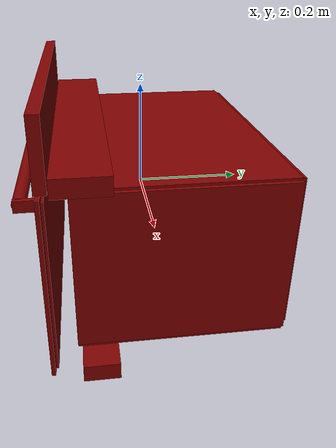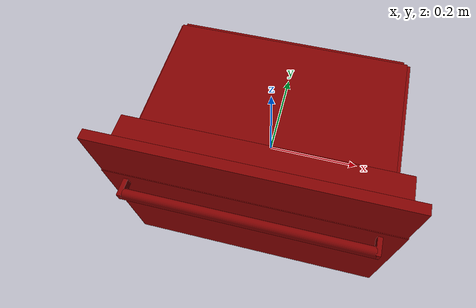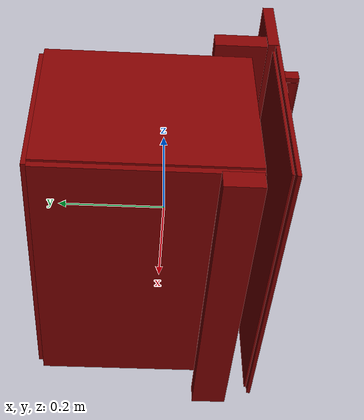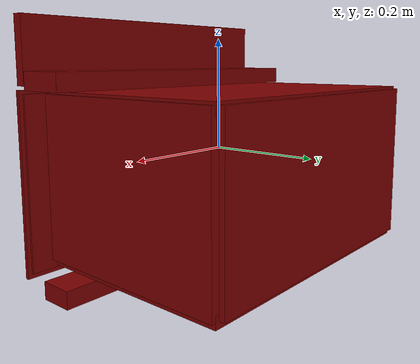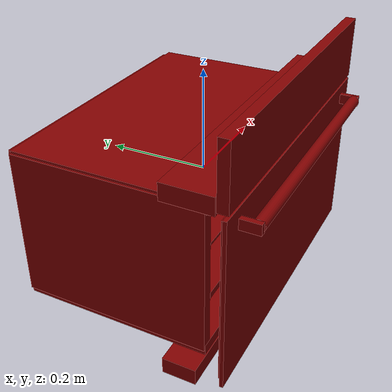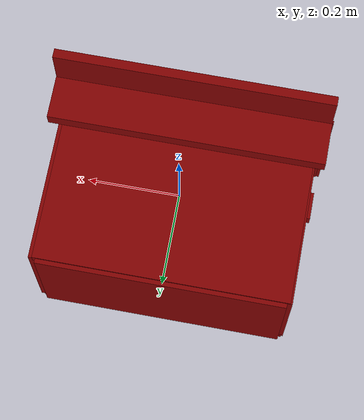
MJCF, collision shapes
<mujoco model="model">
  <compiler angle="radian"/>
  <asset>
    <mesh file="visuals/Body001.obj" name="Body001_vis"/>
    <mesh file="visuals/Container001.obj" name="Container001_vis"/>
    <mesh file="visuals/Container002.obj" name="Container002_vis"/>
    <mesh file="visuals/Door001.obj" name="Door001_vis"/>
    <mesh file="visuals/Door001_Clear.obj" name="Door001_Clear_vis"/>
    <texture file="visuals/T_BC001.png" name="Body001_material" type="2d"/>
    <material name="Body001_material" rgba="1 1 1 1.0" texture="Body001_material" shininess="0.5" specular="0.3103448502657381"/>
    <texture file="visuals/T_BC001.png" name="Container001_material" type="2d"/>
    <material name="Container001_material" rgba="1 1 1 1.0" texture="Container001_material" shininess="0.5" specular="0.3103448502657381"/>
    <texture file="visuals/T_BC001.png" name="Container002_material" type="2d"/>
    <material name="Container002_material" rgba="1 1 1 1.0" texture="Container002_material" shininess="0.5" specular="0.3103448502657381"/>
    <texture file="visuals/T_BC001.png" name="Door001_material" type="2d"/>
    <material name="Door001_material" rgba="1 1 1 1.0" texture="Door001_material" shininess="0.5" specular="0.3103448502657381"/>
    <texture file="visuals/T_BC001.png" name="Door001_Clear_material" type="2d"/>
    <material name="Door001_Clear_material" rgba="1 1 1 0.7731958627700806" texture="Door001_Clear_material" shininess="0.5" specular="0.3103448502657381"/>
  </asset>
  <default>
    <default class="visual">
      <geom conaffinity="0" contype="0" group="1" type="mesh"/>
    </default>
    <default class="collision">
      <geom group="0" rgba="0.5 0 0 0.5"/>
    </default>
    <default class="spawn">
      <geom group="0" rgba="1 1 1 0.5" contype="0" conaffinity="0"/>
      <site group="0" rgba="1 1 1 0.5"/>
    </default>
    <default class="region">
      <geom group="1" conaffinity="0" contype="0" rgba="0 1 0 0"/>
    </default>
  </default>
  <worldbody>
    <body>
      <body name="object">
        <geom mesh="Body001_vis" type="mesh" solimp="0.998 0.998 0.001" solref="0.001 1" density="100" friction="0.95 0.3 0.1" class="visual" material="Body001_material"/>
        <geom class="collision" type="box" pos="0.0005897199735045433 -0.17817050218582153 0.17886848747730255" size="0.29561981558799744 0.00988076627254486 0.05934790149331093" quat="1.0 0.0 0.0 0.0"/>
        <geom class="collision" type="box" pos="0.0005897199735045433 -0.12034451961517334 0.12873178720474243" size="0.29561981558799744 0.04625357687473297 0.016083436086773872" quat="1.0 0.0 0.0 0.0"/>
        <geom class="collision" type="box" pos="0.0005897199735045433 -0.10207117348909378 -0.2241232544183731" size="0.29561981558799744 0.03201546519994736 0.016083436086773872" quat="1.0 0.0 0.0 0.0"/>
        <geom class="collision" type="box" pos="0.0005897199735045433 -0.09587820619344711 -0.19395418465137482" size="0.19131983816623688 0.023217469453811646 0.016083434224128723" quat="1.0 0.0 0.0 0.0"/>
        <geom class="collision" type="box" pos="-0.0024960804730653763 0.2229592502117157 -0.0349552221596241" size="0.26218441128730774 0.00988076627254486 0.14234308898448944" quat="1.0 0.0 0.0 0.0"/>
        <geom class="collision" type="box" pos="0.2646077275276184 0.04112903028726578 -0.0349552221596241" size="0.00988078024238348 0.18203607201576233 0.14234308898448944" quat="1.0 0.0 0.0 0.0"/>
        <geom class="collision" type="box" pos="-0.2654913663864136 0.04112903028726578 -0.0349552221596241" size="0.00988078024238348 0.18203607201576233 0.14234308898448944" quat="1.0 0.0 0.0 0.0"/>
        <geom class="collision" type="box" pos="-0.0023331288248300552 0.04112903028726578 0.10197731107473373" size="0.26893773674964905 0.18203608691692352 0.009880789555609226" quat="1.0 0.0 0.0 0.0"/>
        <geom class="collision" type="box" pos="-0.0023331288248300552 0.04112903028726578 -0.1783587485551834" size="0.26893773674964905 0.18203608691692352 0.009880789555609226" quat="1.0 0.0 0.0 0.0"/>
        <body name="Container001">
          <joint axis="0.0 -1.0 0.0" pos="-9.388010948896408e-05 0.009812705218791962 -0.013497047126293182" limited="true" name="Container001_joint" range="0.0 0.25" type="slide" damping="1" frictionloss="1" armature=".01" stiffness="0.05"/>
          <geom mesh="Container001_vis" type="mesh" solimp="0.998 0.998 0.001" solref="0.001 1" density="100" friction="0.95 0.3 0.1" class="visual" material="Container001_material"/>
          <geom class="collision" type="box" pos="-0.00011194217950105667 0.008494682610034943 -0.014804147183895111" size="0.2433086782693863 0.12272078543901443 0.002559476066380739" quat="1.0 0.0 0.0 0.0"/>
        </body>
        <body name="Container002">
          <joint axis="0.0 -1.0 0.0" pos="0.0004844311624765396 0.02027975767850876 -0.09068997949361801" limited="true" name="Container002_joint" range="0.0 0.25" type="slide" damping="1" frictionloss="1" armature=".01" stiffness="0.05"/>
          <geom mesh="Container002_vis" type="mesh" solimp="0.998 0.998 0.001" solref="0.001 1" density="100" friction="0.95 0.3 0.1" class="visual" material="Container002_material"/>
          <geom class="collision" type="box" pos="-0.00011194217950105667 0.020306125283241272 -0.0956801027059555" size="0.23718252778053284 0.14945583045482635 0.006238078232854605" quat="1.0 0.0 0.0 0.0"/>
        </body>
        <body name="Door001">
          <joint axis="1.0 0.0 0.0" pos="-0.011750079691410065 -0.17686814069747925 -0.21409060060977936" limited="true" name="Door001_joint" range="0.0 1.5707963267948966" type="hinge" damping="1" frictionloss="1" armature=".01" stiffness="1" springref="-1.6"/>
          <geom mesh="Door001_vis" type="mesh" solimp="0.998 0.998 0.001" solref="0.001 1" density="100" friction="0.95 0.3 0.1" class="visual" material="Door001_material"/>
          <geom class="collision" type="box" pos="0.00013540033251047134 -0.18361909687519073 -0.051945582032203674" size="0.2994017004966736 0.00346585875377059 0.16467206180095673" quat="1.0 0.0 0.0 0.0"/>
          <geom class="collision" type="cylinder" pos="0.0005732439458370209 -0.2154431790113449 0.08429500460624695" size="0.011177510023117065 0.24997226893901825" quat="0.7071068286895752 1.2101618374060763e-08 0.7071067690849304 -1.2101617485882343e-08"/>
          <geom class="collision" type="box" pos="0.25304916501045227 -0.20494045317173004 0.08437934517860413" size="0.004834496416151524 0.019185734912753105 0.009914780035614967" quat="1.0 0.0 0.0 0.0"/>
          <geom class="collision" type="box" pos="-0.2537396550178528 -0.20494045317173004 0.08437934517860413" size="0.004834496416151524 0.019185734912753105 0.009914780035614967" quat="1.0 0.0 0.0 0.0"/>
          <body name="Door001_Clear">
            <geom mesh="Door001_Clear_vis" type="mesh" solimp="0.998 0.998 0.001" solref="0.001 1" density="100" friction="0.95 0.3 0.1" class="visual" material="Door001_Clear_material"/>
            <geom class="collision" type="box" pos="0.0005355076864361763 -0.1767275631427765 -0.05019999295473099" size="0.29228195548057556 0.0020608052145689726 0.15669754147529602" quat="1.0 0.0 0.0 0.0"/>
          </body>
        </body>
        <geom class="region" name="reg_main" type="box" pos="0.0 0.018762513995170593 0.0" size="0.29709380865097046 0.20703603327274323 0.23956091701984406"/>
        <geom class="region" name="reg_int" type="box" pos="0.001600317656993866 0.020201310515403748 -0.03730297088623047" size="0.2501147463917732 0.1809871643781662 0.1310001015663147"/>
      </body>
    </body>
  </worldbody>
  <actuator>
    <motor name="Container001_joint_actuator" joint="Container001_joint" gear="10"/>
    <motor name="Container002_joint_actuator" joint="Container002_joint" gear="10"/>
    <motor name="Door001_joint_actuator" joint="Door001_joint" gear="20"/>
  </actuator>
</mujoco>
